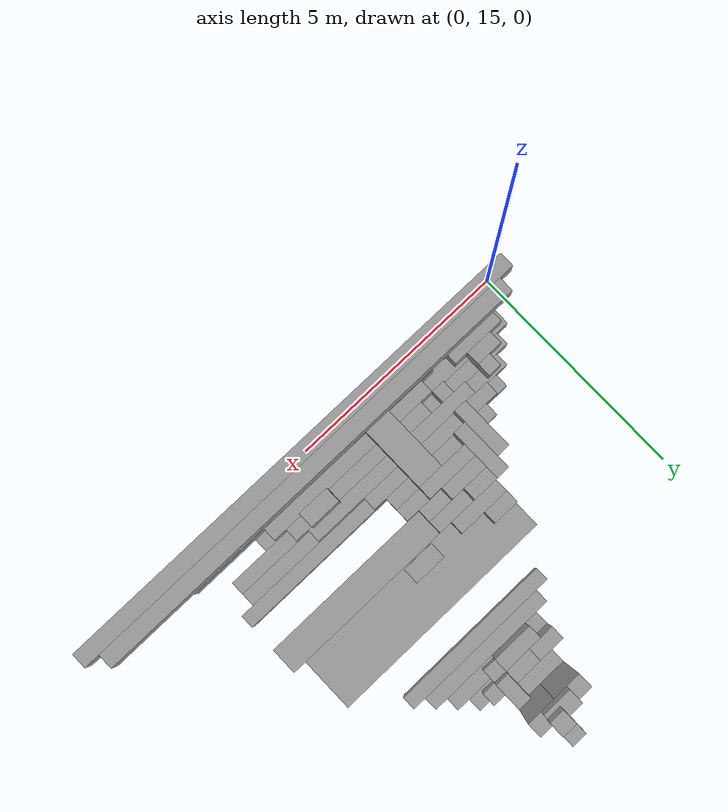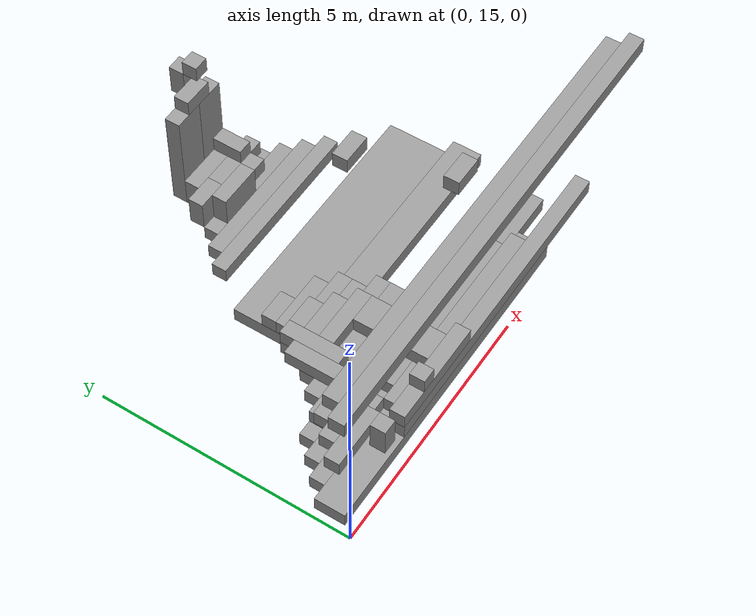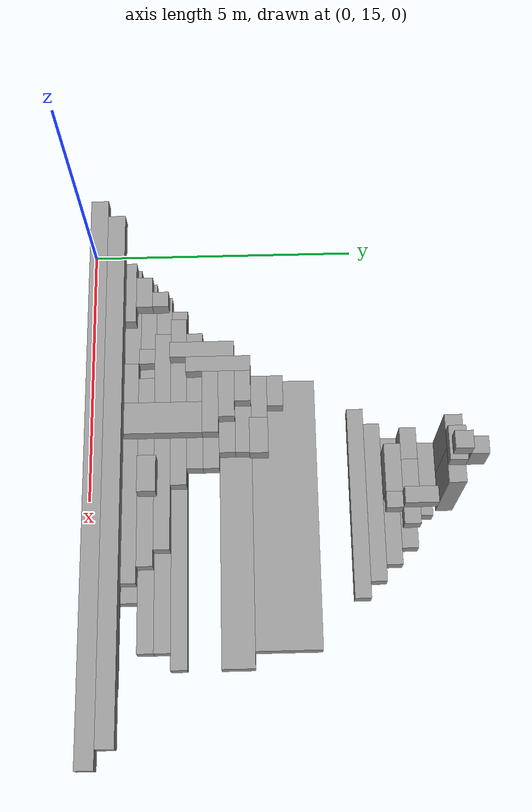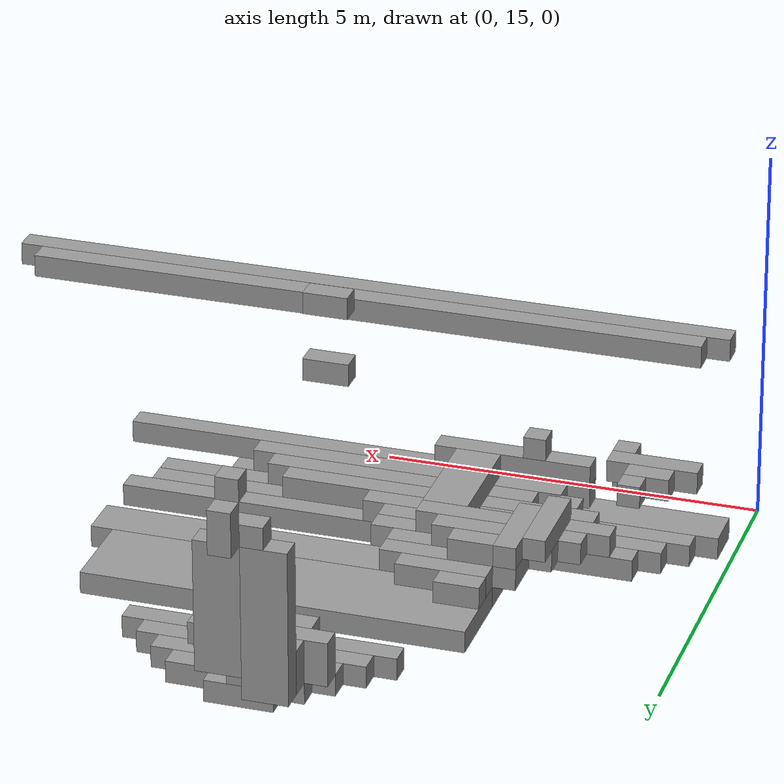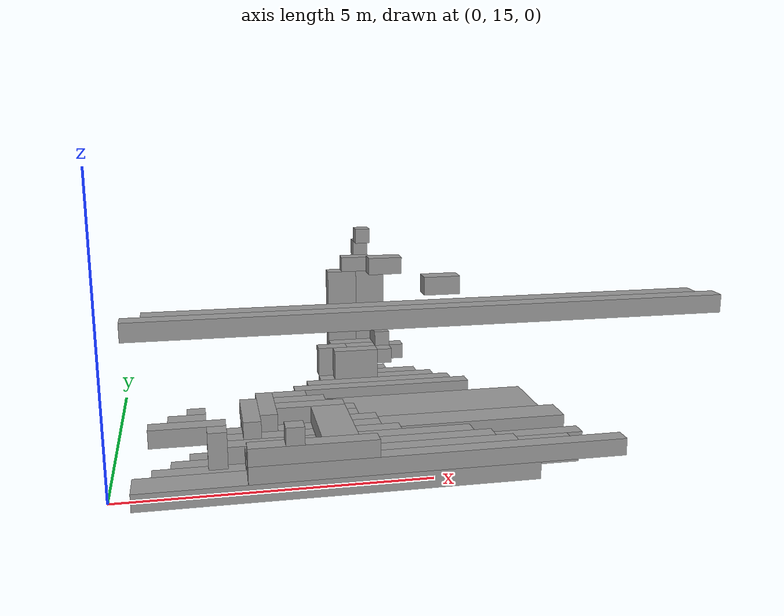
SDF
<sdf version="1.6">
 <world name="bt_world">
  <include><uri>model://sun</uri></include>
  <model name="obstacle_2179">
   <static>true</static>
   <pose>3.5999999999999996 15.6 -0.15 0 0 0</pose>
   <link name="link">
    <collision name="collision"><geometry><box><size>6.6 0.6 0.3</size></box></geometry></collision>
    <visual name="visual">
     <geometry><box><size>6.6 0.6 0.3</size></box></geometry>
     <material><ambient>0.5 0.5 0.5 1</ambient><diffuse>0.6 0.6 0.6 1</diffuse></material>
    </visual>
   </link>
  </model>
  <model name="obstacle_2182">
   <static>true</static>
   <pose>5.1 15.45 2.55 0 0 0</pose>
   <link name="link">
    <collision name="collision"><geometry><box><size>9.6 0.3 0.3</size></box></geometry></collision>
    <visual name="visual">
     <geometry><box><size>9.6 0.3 0.3</size></box></geometry>
     <material><ambient>0.5 0.5 0.5 1</ambient><diffuse>0.6 0.6 0.6 1</diffuse></material>
    </visual>
   </link>
  </model>
  <model name="obstacle_2202">
   <static>true</static>
   <pose>1.2 15.75 0.75 0 0 0</pose>
   <link name="link">
    <collision name="collision"><geometry><box><size>1.2 0.3 0.3</size></box></geometry></collision>
    <visual name="visual">
     <geometry><box><size>1.2 0.3 0.3</size></box></geometry>
     <material><ambient>0.5 0.5 0.5 1</ambient><diffuse>0.6 0.6 0.6 1</diffuse></material>
    </visual>
   </link>
  </model>
  <model name="obstacle_2203">
   <static>true</static>
   <pose>5.1 15.75 2.55 0 0 0</pose>
   <link name="link">
    <collision name="collision"><geometry><box><size>9.0 0.3 0.3</size></box></geometry></collision>
    <visual name="visual">
     <geometry><box><size>9.0 0.3 0.3</size></box></geometry>
     <material><ambient>0.5 0.5 0.5 1</ambient><diffuse>0.6 0.6 0.6 1</diffuse></material>
    </visual>
   </link>
  </model>
  <model name="obstacle_2204">
   <static>true</static>
   <pose>4.2 16.05 -0.15 0 0 0</pose>
   <link name="link">
    <collision name="collision"><geometry><box><size>7.199999999999999 0.3 0.3</size></box></geometry></collision>
    <visual name="visual">
     <geometry><box><size>7.199999999999999 0.3 0.3</size></box></geometry>
     <material><ambient>0.5 0.5 0.5 1</ambient><diffuse>0.6 0.6 0.6 1</diffuse></material>
    </visual>
   </link>
  </model>
  <model name="obstacle_2216">
   <static>true</static>
   <pose>1.2 16.05 0.75 0 0 0</pose>
   <link name="link">
    <collision name="collision"><geometry><box><size>0.6 0.3 0.3</size></box></geometry></collision>
    <visual name="visual">
     <geometry><box><size>0.6 0.3 0.3</size></box></geometry>
     <material><ambient>0.5 0.5 0.5 1</ambient><diffuse>0.6 0.6 0.6 1</diffuse></material>
    </visual>
   </link>
  </model>
  <model name="obstacle_2217">
   <static>true</static>
   <pose>4.35 16.349999999999998 -0.15 0 0 0</pose>
   <link name="link">
    <collision name="collision">
     <geometry><box><size>6.8999999999999995 0.3 0.3</size></box></geometry>
    </collision>
    <visual name="visual">
     <geometry><box><size>6.8999999999999995 0.3 0.3</size></box></geometry>
     <material><ambient>0.5 0.5 0.5 1</ambient><diffuse>0.6 0.6 0.6 1</diffuse></material>
    </visual>
   </link>
  </model>
  <model name="obstacle_2226">
   <static>true</static>
   <pose>1.3499999999999999 16.349999999999998 0.75 0 0 0</pose>
   <link name="link">
    <collision name="collision"><geometry><box><size>0.3 0.3 0.3</size></box></geometry></collision>
    <visual name="visual">
     <geometry><box><size>0.3 0.3 0.3</size></box></geometry>
     <material><ambient>0.5 0.5 0.5 1</ambient><diffuse>0.6 0.6 0.6 1</diffuse></material>
    </visual>
   </link>
  </model>
  <model name="obstacle_2227">
   <static>true</static>
   <pose>4.6499999999999995 16.65 -0.15 0 0 0</pose>
   <link name="link">
    <collision name="collision">
     <geometry><box><size>6.8999999999999995 0.3 0.3</size></box></geometry>
    </collision>
    <visual name="visual">
     <geometry><box><size>6.8999999999999995 0.3 0.3</size></box></geometry>
     <material><ambient>0.5 0.5 0.5 1</ambient><diffuse>0.6 0.6 0.6 1</diffuse></material>
    </visual>
   </link>
  </model>
  <model name="obstacle_2242">
   <static>true</static>
   <pose>1.65 15.45 0.6 0 0 0</pose>
   <link name="link">
    <collision name="collision"><geometry><box><size>0.3 0.3 0.6</size></box></geometry></collision>
    <visual name="visual">
     <geometry><box><size>0.3 0.3 0.6</size></box></geometry>
     <material><ambient>0.5 0.5 0.5 1</ambient><diffuse>0.6 0.6 0.6 1</diffuse></material>
    </visual>
   </link>
  </model>
  <model name="obstacle_2243">
   <static>true</static>
   <pose>3.15 16.65 0.15 0 0 0</pose>
   <link name="link">
    <collision name="collision"><geometry><box><size>3.3 0.3 0.3</size></box></geometry></collision>
    <visual name="visual">
     <geometry><box><size>3.3 0.3 0.3</size></box></geometry>
     <material><ambient>0.5 0.5 0.5 1</ambient><diffuse>0.6 0.6 0.6 1</diffuse></material>
    </visual>
   </link>
  </model>
  <model name="obstacle_2256">
   <static>true</static>
   <pose>3.9 16.349999999999998 0.15 0 0 0</pose>
   <link name="link">
    <collision name="collision"><geometry><box><size>4.2 0.3 0.3</size></box></geometry></collision>
    <visual name="visual">
     <geometry><box><size>4.2 0.3 0.3</size></box></geometry>
     <material><ambient>0.5 0.5 0.5 1</ambient><diffuse>0.6 0.6 0.6 1</diffuse></material>
    </visual>
   </link>
  </model>
  <model name="obstacle_2257">
   <static>true</static>
   <pose>3.15 16.95 0.15 0 0 0</pose>
   <link name="link">
    <collision name="collision">
     <geometry><box><size>2.6999999999999997 0.3 0.3</size></box></geometry>
    </collision>
    <visual name="visual">
     <geometry><box><size>2.6999999999999997 0.3 0.3</size></box></geometry>
     <material><ambient>0.5 0.5 0.5 1</ambient><diffuse>0.6 0.6 0.6 1</diffuse></material>
    </visual>
   </link>
  </model>
  <model name="obstacle_2268">
   <static>true</static>
   <pose>5.25 15.45 0.15 0 0 0</pose>
   <link name="link">
    <collision name="collision"><geometry><box><size>6.3 0.3 0.3</size></box></geometry></collision>
    <visual name="visual">
     <geometry><box><size>6.3 0.3 0.3</size></box></geometry>
     <material><ambient>0.5 0.5 0.5 1</ambient><diffuse>0.6 0.6 0.6 1</diffuse></material>
    </visual>
   </link>
  </model>
  <model name="obstacle_2269">
   <static>true</static>
   <pose>3.15 15.45 0.44999999999999996 0 0 0</pose>
   <link name="link">
    <collision name="collision"><geometry><box><size>2.1 0.3 0.3</size></box></geometry></collision>
    <visual name="visual">
     <geometry><box><size>2.1 0.3 0.3</size></box></geometry>
     <material><ambient>0.5 0.5 0.5 1</ambient><diffuse>0.6 0.6 0.6 1</diffuse></material>
    </visual>
   </link>
  </model>
  <model name="obstacle_2270">
   <static>true</static>
   <pose>2.25 16.05 0.15 0 0 0</pose>
   <link name="link">
    <collision name="collision"><geometry><box><size>0.3 0.3 0.3</size></box></geometry></collision>
    <visual name="visual">
     <geometry><box><size>0.3 0.3 0.3</size></box></geometry>
     <material><ambient>0.5 0.5 0.5 1</ambient><diffuse>0.6 0.6 0.6 1</diffuse></material>
    </visual>
   </link>
  </model>
  <model name="obstacle_2271">
   <static>true</static>
   <pose>2.25 17.099999999999998 0.44999999999999996 0 0 0</pose>
   <link name="link">
    <collision name="collision"><geometry><box><size>0.3 1.2 0.3</size></box></geometry></collision>
    <visual name="visual">
     <geometry><box><size>0.3 1.2 0.3</size></box></geometry>
     <material><ambient>0.5 0.5 0.5 1</ambient><diffuse>0.6 0.6 0.6 1</diffuse></material>
    </visual>
   </link>
  </model>
  <model name="obstacle_2272">
   <static>true</static>
   <pose>3.3 17.25 0.15 0 0 0</pose>
   <link name="link">
    <collision name="collision"><geometry><box><size>2.4 0.3 0.3</size></box></geometry></collision>
    <visual name="visual">
     <geometry><box><size>2.4 0.3 0.3</size></box></geometry>
     <material><ambient>0.5 0.5 0.5 1</ambient><diffuse>0.6 0.6 0.6 1</diffuse></material>
    </visual>
   </link>
  </model>
  <model name="obstacle_2289">
   <static>true</static>
   <pose>4.5 15.75 0.15 0 0 0</pose>
   <link name="link">
    <collision name="collision"><geometry><box><size>4.2 0.3 0.3</size></box></geometry></collision>
    <visual name="visual">
     <geometry><box><size>4.2 0.3 0.3</size></box></geometry>
     <material><ambient>0.5 0.5 0.5 1</ambient><diffuse>0.6 0.6 0.6 1</diffuse></material>
    </visual>
   </link>
  </model>
  <model name="obstacle_2290">
   <static>true</static>
   <pose>2.55 17.4 0.44999999999999996 0 0 0</pose>
   <link name="link">
    <collision name="collision"><geometry><box><size>0.3 1.2 0.3</size></box></geometry></collision>
    <visual name="visual">
     <geometry><box><size>0.3 1.2 0.3</size></box></geometry>
     <material><ambient>0.5 0.5 0.5 1</ambient><diffuse>0.6 0.6 0.6 1</diffuse></material>
    </visual>
   </link>
  </model>
  <model name="obstacle_2291">
   <static>true</static>
   <pose>2.55 17.7 0.15 0 0 0</pose>
   <link name="link">
    <collision name="collision"><geometry><box><size>0.3 0.6 0.3</size></box></geometry></collision>
    <visual name="visual">
     <geometry><box><size>0.3 0.6 0.3</size></box></geometry>
     <material><ambient>0.5 0.5 0.5 1</ambient><diffuse>0.6 0.6 0.6 1</diffuse></material>
    </visual>
   </link>
  </model>
  <model name="obstacle_2315">
   <static>true</static>
   <pose>2.85 15.45 0.75 0 0 0</pose>
   <link name="link">
    <collision name="collision"><geometry><box><size>0.3 0.3 0.3</size></box></geometry></collision>
    <visual name="visual">
     <geometry><box><size>0.3 0.3 0.3</size></box></geometry>
     <material><ambient>0.5 0.5 0.5 1</ambient><diffuse>0.6 0.6 0.6 1</diffuse></material>
    </visual>
   </link>
  </model>
  <model name="obstacle_2316">
   <static>true</static>
   <pose>4.5 16.05 0.15 0 0 0</pose>
   <link name="link">
    <collision name="collision">
     <geometry><box><size>3.5999999999999996 0.3 0.3</size></box></geometry>
    </collision>
    <visual name="visual">
     <geometry><box><size>3.5999999999999996 0.3 0.3</size></box></geometry>
     <material><ambient>0.5 0.5 0.5 1</ambient><diffuse>0.6 0.6 0.6 1</diffuse></material>
    </visual>
   </link>
  </model>
  <model name="obstacle_2318">
   <static>true</static>
   <pose>3.3 17.25 0.44999999999999996 0 0 0</pose>
   <link name="link">
    <collision name="collision"><geometry><box><size>1.2 0.3 0.3</size></box></geometry></collision>
    <visual name="visual">
     <geometry><box><size>1.2 0.3 0.3</size></box></geometry>
     <material><ambient>0.5 0.5 0.5 1</ambient><diffuse>0.6 0.6 0.6 1</diffuse></material>
    </visual>
   </link>
  </model>
  <model name="obstacle_2319">
   <static>true</static>
   <pose>5.3999999999999995 17.7 -0.15 0 0 0</pose>
   <link name="link">
    <collision name="collision">
     <geometry><box><size>5.3999999999999995 0.6 0.3</size></box></geometry>
    </collision>
    <visual name="visual">
     <geometry><box><size>5.3999999999999995 0.6 0.3</size></box></geometry>
     <material><ambient>0.5 0.5 0.5 1</ambient><diffuse>0.6 0.6 0.6 1</diffuse></material>
    </visual>
   </link>
  </model>
  <model name="obstacle_2320">
   <static>true</static>
   <pose>3.15 17.55 0.44999999999999996 0 0 0</pose>
   <link name="link">
    <collision name="collision">
     <geometry><box><size>0.8999999999999999 0.3 0.3</size></box></geometry>
    </collision>
    <visual name="visual">
     <geometry><box><size>0.8999999999999999 0.3 0.3</size></box></geometry>
     <material><ambient>0.5 0.5 0.5 1</ambient><diffuse>0.6 0.6 0.6 1</diffuse></material>
    </visual>
   </link>
  </model>
  <model name="obstacle_2321">
   <static>true</static>
   <pose>3.4499999999999997 17.849999999999998 0.15 0 0 0</pose>
   <link name="link">
    <collision name="collision"><geometry><box><size>1.5 0.3 0.3</size></box></geometry></collision>
    <visual name="visual">
     <geometry><box><size>1.5 0.3 0.3</size></box></geometry>
     <material><ambient>0.5 0.5 0.5 1</ambient><diffuse>0.6 0.6 0.6 1</diffuse></material>
    </visual>
   </link>
  </model>
  <model name="obstacle_2322">
   <static>true</static>
   <pose>3.0 17.849999999999998 0.44999999999999996 0 0 0</pose>
   <link name="link">
    <collision name="collision"><geometry><box><size>0.6 0.3 0.3</size></box></geometry></collision>
    <visual name="visual">
     <geometry><box><size>0.6 0.3 0.3</size></box></geometry>
     <material><ambient>0.5 0.5 0.5 1</ambient><diffuse>0.6 0.6 0.6 1</diffuse></material>
    </visual>
   </link>
  </model>
  <model name="obstacle_2323">
   <static>true</static>
   <pose>5.25 18.599999999999998 -0.15 0 0 0</pose>
   <link name="link">
    <collision name="collision"><geometry><box><size>5.1 1.2 0.3</size></box></geometry></collision>
    <visual name="visual">
     <geometry><box><size>5.1 1.2 0.3</size></box></geometry>
     <material><ambient>0.5 0.5 0.5 1</ambient><diffuse>0.6 0.6 0.6 1</diffuse></material>
    </visual>
   </link>
  </model>
  <model name="obstacle_2324">
   <static>true</static>
   <pose>3.3 18.15 0.15 0 0 0</pose>
   <link name="link">
    <collision name="collision"><geometry><box><size>1.2 0.3 0.3</size></box></geometry></collision>
    <visual name="visual">
     <geometry><box><size>1.2 0.3 0.3</size></box></geometry>
     <material><ambient>0.5 0.5 0.5 1</ambient><diffuse>0.6 0.6 0.6 1</diffuse></material>
    </visual>
   </link>
  </model>
  <model name="obstacle_2325">
   <static>true</static>
   <pose>3.0 18.45 0.15 0 0 0</pose>
   <link name="link">
    <collision name="collision"><geometry><box><size>0.6 0.3 0.3</size></box></geometry></collision>
    <visual name="visual">
     <geometry><box><size>0.6 0.3 0.3</size></box></geometry>
     <material><ambient>0.5 0.5 0.5 1</ambient><diffuse>0.6 0.6 0.6 1</diffuse></material>
    </visual>
   </link>
  </model>
  <model name="obstacle_2354">
   <static>true</static>
   <pose>3.5999999999999996 17.55 0.15 0 0 0</pose>
   <link name="link">
    <collision name="collision"><geometry><box><size>1.2 0.3 0.3</size></box></geometry></collision>
    <visual name="visual">
     <geometry><box><size>1.2 0.3 0.3</size></box></geometry>
     <material><ambient>0.5 0.5 0.5 1</ambient><diffuse>0.6 0.6 0.6 1</diffuse></material>
    </visual>
   </link>
  </model>
  <model name="obstacle_2376">
   <static>true</static>
   <pose>3.5999999999999996 16.349999999999998 0.44999999999999996 0 0 0</pose>
   <link name="link">
    <collision name="collision"><geometry><box><size>0.6 1.5 0.3</size></box></geometry></collision>
    <visual name="visual">
     <geometry><box><size>0.6 1.5 0.3</size></box></geometry>
     <material><ambient>0.5 0.5 0.5 1</ambient><diffuse>0.6 0.6 0.6 1</diffuse></material>
    </visual>
   </link>
  </model>
  <model name="obstacle_2380">
   <static>true</static>
   <pose>5.1 19.95 -0.15 0 0 0</pose>
   <link name="link">
    <collision name="collision">
     <geometry><box><size>3.5999999999999996 0.3 0.3</size></box></geometry>
    </collision>
    <visual name="visual">
     <geometry><box><size>3.5999999999999996 0.3 0.3</size></box></geometry>
     <material><ambient>0.5 0.5 0.5 1</ambient><diffuse>0.6 0.6 0.6 1</diffuse></material>
    </visual>
   </link>
  </model>
  <model name="obstacle_2391">
   <static>true</static>
   <pose>5.1 20.25 -0.15 0 0 0</pose>
   <link name="link">
    <collision name="collision"><geometry><box><size>3.0 0.3 0.3</size></box></geometry></collision>
    <visual name="visual">
     <geometry><box><size>3.0 0.3 0.3</size></box></geometry>
     <material><ambient>0.5 0.5 0.5 1</ambient><diffuse>0.6 0.6 0.6 1</diffuse></material>
    </visual>
   </link>
  </model>
  <model name="obstacle_2455">
   <static>true</static>
   <pose>5.1 20.55 -0.15 0 0 0</pose>
   <link name="link">
    <collision name="collision"><geometry><box><size>2.4 0.3 0.3</size></box></geometry></collision>
    <visual name="visual">
     <geometry><box><size>2.4 0.3 0.3</size></box></geometry>
     <material><ambient>0.5 0.5 0.5 1</ambient><diffuse>0.6 0.6 0.6 1</diffuse></material>
    </visual>
   </link>
  </model>
  <model name="obstacle_2457">
   <static>true</static>
   <pose>4.2 20.849999999999998 0.3 0 0 0</pose>
   <link name="link">
    <collision name="collision"><geometry><box><size>0.6 0.3 0.6</size></box></geometry></collision>
    <visual name="visual">
     <geometry><box><size>0.6 0.3 0.6</size></box></geometry>
     <material><ambient>0.5 0.5 0.5 1</ambient><diffuse>0.6 0.6 0.6 1</diffuse></material>
    </visual>
   </link>
  </model>
  <model name="obstacle_2549">
   <static>true</static>
   <pose>4.6499999999999995 20.55 0.3 0 0 0</pose>
   <link name="link">
    <collision name="collision">
     <geometry><box><size>0.8999999999999999 0.3 0.6</size></box></geometry>
    </collision>
    <visual name="visual">
     <geometry><box><size>0.8999999999999999 0.3 0.6</size></box></geometry>
     <material><ambient>0.5 0.5 0.5 1</ambient><diffuse>0.6 0.6 0.6 1</diffuse></material>
    </visual>
   </link>
  </model>
  <model name="obstacle_2550">
   <static>true</static>
   <pose>5.1 20.849999999999998 -0.15 0 0 0</pose>
   <link name="link">
    <collision name="collision">
     <geometry><box><size>1.7999999999999998 0.3 0.3</size></box></geometry>
    </collision>
    <visual name="visual">
     <geometry><box><size>1.7999999999999998 0.3 0.3</size></box></geometry>
     <material><ambient>0.5 0.5 0.5 1</ambient><diffuse>0.6 0.6 0.6 1</diffuse></material>
    </visual>
   </link>
  </model>
  <model name="obstacle_2552">
   <static>true</static>
   <pose>4.6499999999999995 21.15 0.3 0 0 0</pose>
   <link name="link">
    <collision name="collision">
     <geometry><box><size>0.8999999999999999 0.3 0.6</size></box></geometry>
    </collision>
    <visual name="visual">
     <geometry><box><size>0.8999999999999999 0.3 0.6</size></box></geometry>
     <material><ambient>0.5 0.5 0.5 1</ambient><diffuse>0.6 0.6 0.6 1</diffuse></material>
    </visual>
   </link>
  </model>
  <model name="obstacle_2553">
   <static>true</static>
   <pose>4.5 21.45 1.05 0 0 0</pose>
   <link name="link">
    <collision name="collision"><geometry><box><size>0.6 0.3 2.1</size></box></geometry></collision>
    <visual name="visual">
     <geometry><box><size>0.6 0.3 2.1</size></box></geometry>
     <material><ambient>0.5 0.5 0.5 1</ambient><diffuse>0.6 0.6 0.6 1</diffuse></material>
    </visual>
   </link>
  </model>
  <model name="obstacle_2597">
   <static>true</static>
   <pose>4.8 18.15 2.85 0 0 0</pose>
   <link name="link">
    <collision name="collision"><geometry><box><size>0.6 0.3 0.3</size></box></geometry></collision>
    <visual name="visual">
     <geometry><box><size>0.6 0.3 0.3</size></box></geometry>
     <material><ambient>0.5 0.5 0.5 1</ambient><diffuse>0.6 0.6 0.6 1</diffuse></material>
    </visual>
   </link>
  </model>
  <model name="obstacle_2598">
   <static>true</static>
   <pose>5.1 20.849999999999998 0.44999999999999996 0 0 0</pose>
   <link name="link">
    <collision name="collision"><geometry><box><size>1.2 0.3 0.3</size></box></geometry></collision>
    <visual name="visual">
     <geometry><box><size>1.2 0.3 0.3</size></box></geometry>
     <material><ambient>0.5 0.5 0.5 1</ambient><diffuse>0.6 0.6 0.6 1</diffuse></material>
    </visual>
   </link>
  </model>
  <model name="obstacle_2599">
   <static>true</static>
   <pose>4.95 21.15 -0.15 0 0 0</pose>
   <link name="link">
    <collision name="collision">
     <geometry><box><size>0.8999999999999999 0.3 0.3</size></box></geometry>
    </collision>
    <visual name="visual">
     <geometry><box><size>0.8999999999999999 0.3 0.3</size></box></geometry>
     <material><ambient>0.5 0.5 0.5 1</ambient><diffuse>0.6 0.6 0.6 1</diffuse></material>
    </visual>
   </link>
  </model>
  <model name="obstacle_2601">
   <static>true</static>
   <pose>4.8 21.45 2.25 0 0 0</pose>
   <link name="link">
    <collision name="collision"><geometry><box><size>0.6 0.3 0.3</size></box></geometry></collision>
    <visual name="visual">
     <geometry><box><size>0.6 0.3 0.3</size></box></geometry>
     <material><ambient>0.5 0.5 0.5 1</ambient><diffuse>0.6 0.6 0.6 1</diffuse></material>
    </visual>
   </link>
  </model>
  <model name="obstacle_2612">
   <static>true</static>
   <pose>4.95 20.849999999999998 0.15 0 0 0</pose>
   <link name="link">
    <collision name="collision"><geometry><box><size>0.3 0.3 0.3</size></box></geometry></collision>
    <visual name="visual">
     <geometry><box><size>0.3 0.3 0.3</size></box></geometry>
     <material><ambient>0.5 0.5 0.5 1</ambient><diffuse>0.6 0.6 0.6 1</diffuse></material>
    </visual>
   </link>
  </model>
  <model name="obstacle_2613">
   <static>true</static>
   <pose>5.1 21.45 1.2 0 0 0</pose>
   <link name="link">
    <collision name="collision">
     <geometry><box><size>0.6 0.3 1.7999999999999998</size></box></geometry>
    </collision>
    <visual name="visual">
     <geometry><box><size>0.6 0.3 1.7999999999999998</size></box></geometry>
     <material><ambient>0.5 0.5 0.5 1</ambient><diffuse>0.6 0.6 0.6 1</diffuse></material>
    </visual>
   </link>
  </model>
  <model name="obstacle_2614">
   <static>true</static>
   <pose>4.95 21.45 2.85 0 0 0</pose>
   <link name="link">
    <collision name="collision"><geometry><box><size>0.3 0.3 0.3</size></box></geometry></collision>
    <visual name="visual">
     <geometry><box><size>0.3 0.3 0.3</size></box></geometry>
     <material><ambient>0.5 0.5 0.5 1</ambient><diffuse>0.6 0.6 0.6 1</diffuse></material>
    </visual>
   </link>
  </model>
  <model name="obstacle_2615">
   <static>true</static>
   <pose>4.95 21.75 2.4 0 0 0</pose>
   <link name="link">
    <collision name="collision"><geometry><box><size>0.3 0.3 0.6</size></box></geometry></collision>
    <visual name="visual">
     <geometry><box><size>0.3 0.3 0.6</size></box></geometry>
     <material><ambient>0.5 0.5 0.5 1</ambient><diffuse>0.6 0.6 0.6 1</diffuse></material>
    </visual>
   </link>
  </model>
  <model name="obstacle_2619">
   <static>true</static>
   <pose>5.3999999999999995 16.349999999999998 2.85 0 0 0</pose>
   <link name="link">
    <collision name="collision"><geometry><box><size>0.6 0.3 0.3</size></box></geometry></collision>
    <visual name="visual">
     <geometry><box><size>0.6 0.3 0.3</size></box></geometry>
     <material><ambient>0.5 0.5 0.5 1</ambient><diffuse>0.6 0.6 0.6 1</diffuse></material>
    </visual>
   </link>
  </model>
  <model name="obstacle_2620">
   <static>true</static>
   <pose>5.25 20.55 0.44999999999999996 0 0 0</pose>
   <link name="link">
    <collision name="collision"><geometry><box><size>0.3 0.3 0.3</size></box></geometry></collision>
    <visual name="visual">
     <geometry><box><size>0.3 0.3 0.3</size></box></geometry>
     <material><ambient>0.5 0.5 0.5 1</ambient><diffuse>0.6 0.6 0.6 1</diffuse></material>
    </visual>
   </link>
  </model>
  <model name="obstacle_2621">
   <static>true</static>
   <pose>5.25 21.0 0.75 0 0 0</pose>
   <link name="link">
    <collision name="collision"><geometry><box><size>0.3 0.6 0.3</size></box></geometry></collision>
    <visual name="visual">
     <geometry><box><size>0.3 0.6 0.3</size></box></geometry>
     <material><ambient>0.5 0.5 0.5 1</ambient><diffuse>0.6 0.6 0.6 1</diffuse></material>
    </visual>
   </link>
  </model>
 </world>
</sdf>
